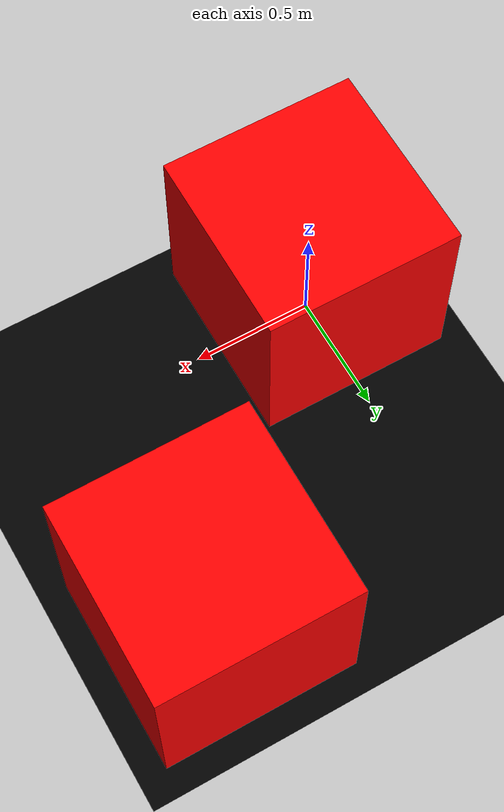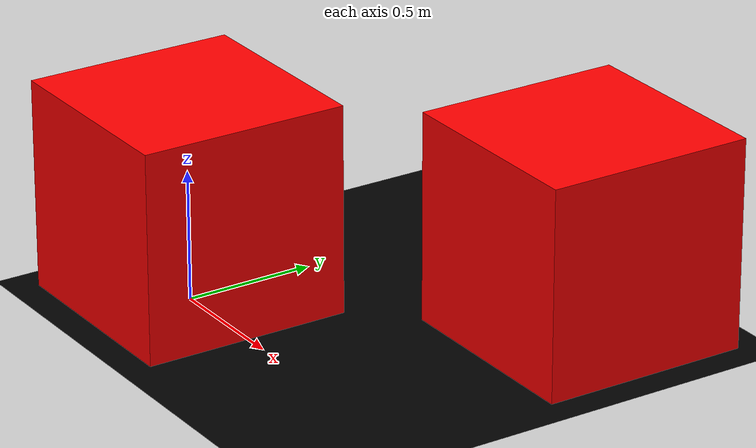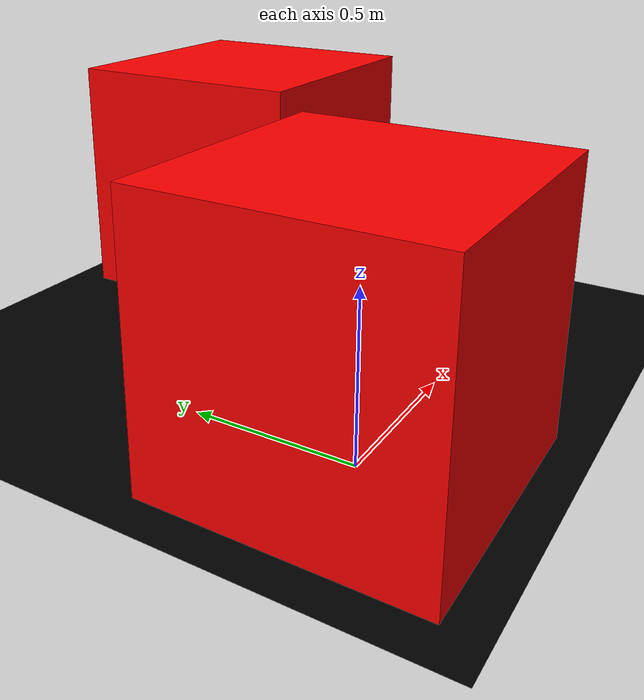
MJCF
<mujoco model="simple_cali_scene_using_orthogonal_camera">
  <option timestep="0.005" gravity="0 0 -9.81"/>

  <worldbody>

    <camera name="topdown" pos="0 0 6" quat="1 0 0 0"/>

    <geom name="ground" type="plane" size="5 5 0.1" rgba="0 0 0 1"/>

    <geom name="box1" type="box"  pos="0.0 0.0 0.4" size="0.4 0.4 0.4" rgba="1 0 0 1"/>

    <geom name="box2" type="box"  pos="1 1 0.4" size="0.4 0.4 0.4" rgba="1 0 0 1"/>

  </worldbody>
</mujoco>
